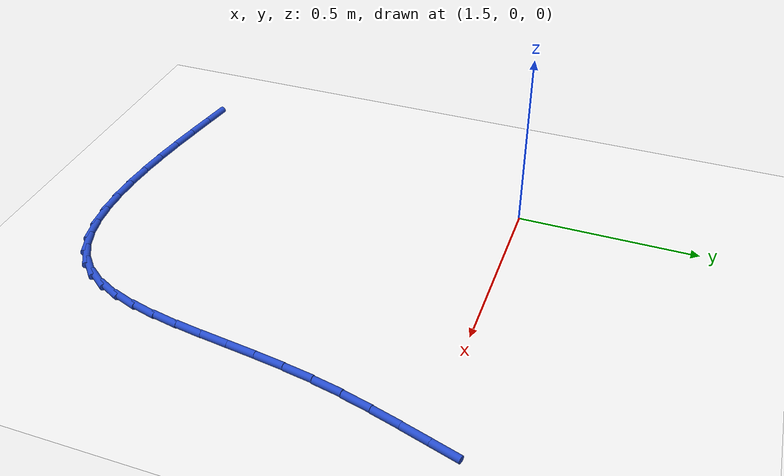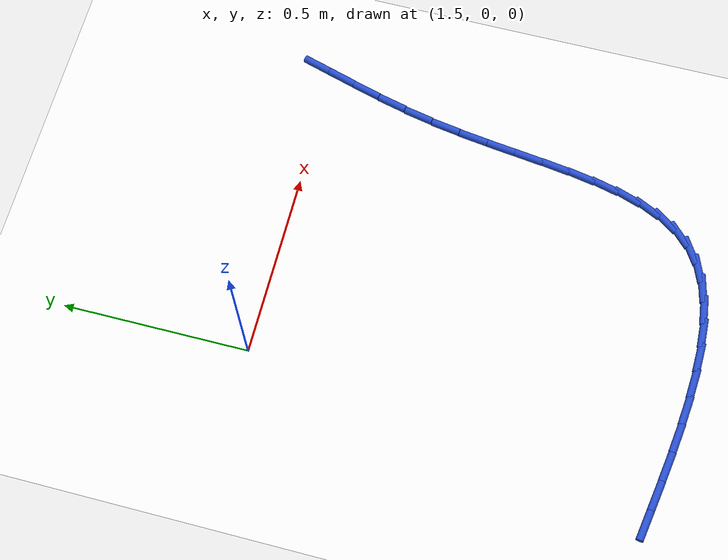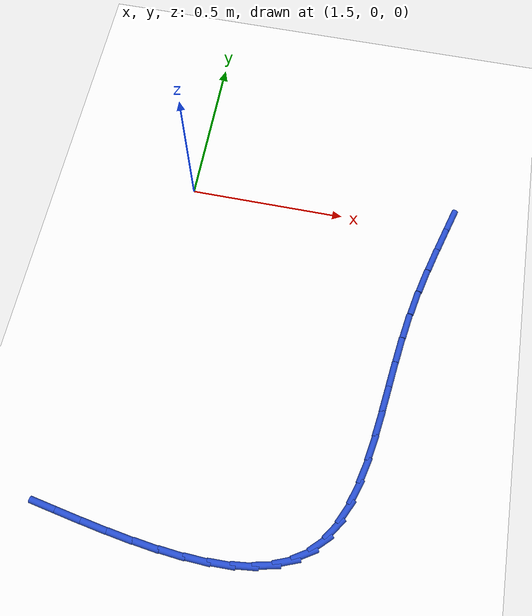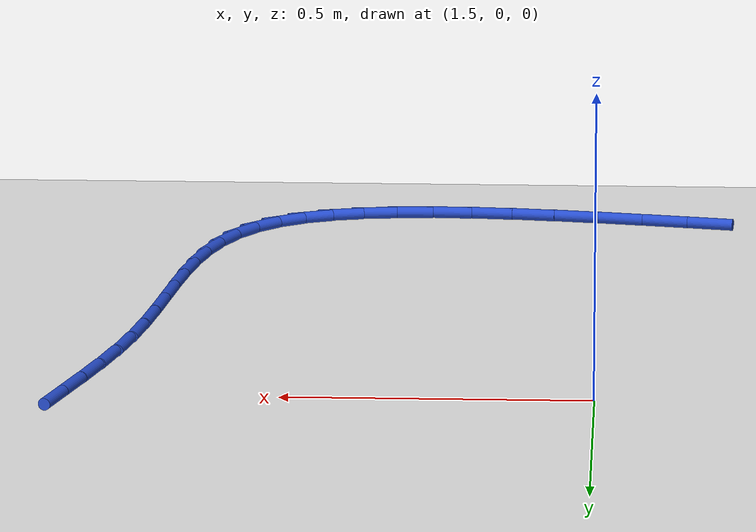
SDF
<sdf version="1.6">
 <world name="default">
  <model name="ground_plane">
   <static>1</static>
   <link name="link">
    <collision name="collision">
     <geometry><plane><normal>0 0 1</normal><size>100 100</size></plane></geometry>
     <surface><friction><ode><mu>100</mu><mu2>50</mu2></ode></friction></surface>
    </collision>
    <visual name="visual">
     <cast_shadows>0</cast_shadows>
     <geometry><plane><normal>0 0 1</normal><size>100 100</size></plane></geometry>
     <material>
      <script><uri>file://media/materials/scripts/gazebo.material</uri><name>Gazebo/WhiteGlow</name></script>
     </material>
    </visual>
   </link>
  </model>
  <model name="line">
   <link name="link_56">
    <pose>2.3531862789197246 0.04844073595215495 0.01 0 1.57 1.288299923309972</pose>
    <collision name="collision">
     <geometry><cylinder><radius>0.01</radius><length>0.08</length></cylinder></geometry>
    </collision>
    <visual name="visual">
     <material>
      <script><name>Gazebo/Blue</name><uri>file://media/materials/scripts/gazebo.material</uri></script>
     </material>
     <geometry><cylinder><radius>0.01</radius><length>0.08</length></cylinder></geometry>
    </visual>
   </link>
   <link name="link_57">
    <pose>2.3313080521662286 -0.02693408233469899 0.01 0 1.57 1.2919317293936248</pose>
    <collision name="collision">
     <geometry><cylinder><radius>0.01</radius><length>0.08</length></cylinder></geometry>
    </collision>
    <visual name="visual">
     <material>
      <script><name>Gazebo/Blue</name><uri>file://media/materials/scripts/gazebo.material</uri></script>
     </material>
     <geometry><cylinder><radius>0.01</radius><length>0.08</length></cylinder></geometry>
    </visual>
   </link>
   <link name="link_58">
    <pose>2.3092125039248854 -0.10410343278648418 0.01 0 1.57 1.3079657842794474</pose>
    <collision name="collision">
     <geometry><cylinder><radius>0.01</radius><length>0.08</length></cylinder></geometry>
    </collision>
    <visual name="visual">
     <material>
      <script><name>Gazebo/Blue</name><uri>file://media/materials/scripts/gazebo.material</uri></script>
     </material>
     <geometry><cylinder><radius>0.01</radius><length>0.08</length></cylinder></geometry>
    </visual>
   </link>
   <link name="link_59">
    <pose>2.288060960289969 -0.1827177245693631 0.01 0 1.57 1.3362492157142865</pose>
    <collision name="collision">
     <geometry><cylinder><radius>0.01</radius><length>0.08</length></cylinder></geometry>
    </collision>
    <visual name="visual">
     <material>
      <script><name>Gazebo/Blue</name><uri>file://media/materials/scripts/gazebo.material</uri></script>
     </material>
     <geometry><cylinder><radius>0.01</radius><length>0.08</length></cylinder></geometry>
    </visual>
   </link>
   <link name="link_60">
    <pose>2.2690147473557545 -0.2624273668494945 0.01 0 1.57 1.3760638374042964</pose>
    <collision name="collision">
     <geometry><cylinder><radius>0.01</radius><length>0.08</length></cylinder></geometry>
    </collision>
    <visual name="visual">
     <material>
      <script><name>Gazebo/Blue</name><uri>file://media/materials/scripts/gazebo.material</uri></script>
     </material>
     <geometry><cylinder><radius>0.01</radius><length>0.08</length></cylinder></geometry>
    </visual>
   </link>
   <link name="link_61">
    <pose>2.253150033687407 -0.34286423186871073 0.01 0 1.57 1.4131498522405987</pose>
    <collision name="collision">
     <geometry><cylinder><radius>0.01</radius><length>0.08</length></cylinder></geometry>
    </collision>
    <visual name="visual">
     <material>
      <script><name>Gazebo/Blue</name><uri>file://media/materials/scripts/gazebo.material</uri></script>
     </material>
     <geometry><cylinder><radius>0.01</radius><length>0.08</length></cylinder></geometry>
    </visual>
   </link>
   <link name="link_62">
    <pose>2.240347622734075 -0.4233999871290474 0.01 0 1.57 1.4370281709953254</pose>
    <collision name="collision">
     <geometry><cylinder><radius>0.01</radius><length>0.08</length></cylinder></geometry>
    </collision>
    <visual name="visual">
     <material>
      <script><name>Gazebo/Blue</name><uri>file://media/materials/scripts/gazebo.material</uri></script>
     </material>
     <geometry><cylinder><radius>0.01</radius><length>0.08</length></cylinder></geometry>
    </visual>
   </link>
   <link name="link_63">
    <pose>2.229606851293002 -0.5032144241962967 0.01 0 1.57 1.447488294890971</pose>
    <collision name="collision">
     <geometry><cylinder><radius>0.01</radius><length>0.08</length></cylinder></geometry>
    </collision>
    <visual name="visual">
     <material>
      <script><name>Gazebo/Blue</name><uri>file://media/materials/scripts/gazebo.material</uri></script>
     </material>
     <geometry><cylinder><radius>0.01</radius><length>0.08</length></cylinder></geometry>
    </visual>
   </link>
   <link name="link_64">
    <pose>2.219906510186932 -0.581482862228714 0.01 0 1.57 1.4439266771376869</pose>
    <collision name="collision">
     <geometry><cylinder><radius>0.01</radius><length>0.08</length></cylinder></geometry>
    </collision>
    <visual name="visual">
     <material>
      <script><name>Gazebo/Blue</name><uri>file://media/materials/scripts/gazebo.material</uri></script>
     </material>
     <geometry><cylinder><radius>0.01</radius><length>0.08</length></cylinder></geometry>
    </visual>
   </link>
   <link name="link_65">
    <pose>2.2102253902386058 -0.6573806203845568 0.01 0 1.57 1.4248974483311745</pose>
    <collision name="collision">
     <geometry><cylinder><radius>0.01</radius><length>0.08</length></cylinder></geometry>
    </collision>
    <visual name="visual">
     <material>
      <script><name>Gazebo/Blue</name><uri>file://media/materials/scripts/gazebo.material</uri></script>
     </material>
     <geometry><cylinder><radius>0.01</radius><length>0.08</length></cylinder></geometry>
    </visual>
   </link>
   <link name="link_66">
    <pose>2.199542282270761 -0.730083017822083 0.01 0 1.57 1.3878635845732934</pose>
    <collision name="collision">
     <geometry><cylinder><radius>0.01</radius><length>0.08</length></cylinder></geometry>
    </collision>
    <visual name="visual">
     <material>
      <script><name>Gazebo/Blue</name><uri>file://media/materials/scripts/gazebo.material</uri></script>
     </material>
     <geometry><cylinder><radius>0.01</radius><length>0.08</length></cylinder></geometry>
    </visual>
   </link>
   <link name="link_67">
    <pose>2.1868359771061416 -0.7987653736995474 0.01 0 1.57 1.3288968995501138</pose>
    <collision name="collision">
     <geometry><cylinder><radius>0.01</radius><length>0.08</length></cylinder></geometry>
    </collision>
    <visual name="visual">
     <material>
      <script><name>Gazebo/Blue</name><uri>file://media/materials/scripts/gazebo.material</uri></script>
     </material>
     <geometry><cylinder><radius>0.01</radius><length>0.08</length></cylinder></geometry>
    </visual>
   </link>
   <link name="link_68">
    <pose>2.1710852655674864 -0.8626030071752091 0.01 0 1.57 1.2424549645302823</pose>
    <collision name="collision">
     <geometry><cylinder><radius>0.01</radius><length>0.08</length></cylinder></geometry>
    </collision>
    <visual name="visual">
     <material>
      <script><name>Gazebo/Blue</name><uri>file://media/materials/scripts/gazebo.material</uri></script>
     </material>
     <geometry><cylinder><radius>0.01</radius><length>0.08</length></cylinder></geometry>
    </visual>
   </link>
   <link name="link_69">
    <pose>2.1512689384775374 -0.9207712374073234 0.01 0 1.57 1.1217115983794206</pose>
    <collision name="collision">
     <geometry><cylinder><radius>0.01</radius><length>0.08</length></cylinder></geometry>
    </collision>
    <visual name="visual">
     <material>
      <script><name>Gazebo/Blue</name><uri>file://media/materials/scripts/gazebo.material</uri></script>
     </material>
     <geometry><cylinder><radius>0.01</radius><length>0.08</length></cylinder></geometry>
    </visual>
   </link>
   <link name="link_70">
    <pose>2.1263657866590346 -0.9724453835541482 0.01 0 1.57 0.960639228568666</pose>
    <collision name="collision">
     <geometry><cylinder><radius>0.01</radius><length>0.08</length></cylinder></geometry>
    </collision>
    <visual name="visual">
     <material>
      <script><name>Gazebo/Blue</name><uri>file://media/materials/scripts/gazebo.material</uri></script>
     </material>
     <geometry><cylinder><radius>0.01</radius><length>0.08</length></cylinder></geometry>
    </visual>
   </link>
   <link name="link_71">
    <pose>2.0953546009347193 -1.0168007647739394 0.01 0 1.57 0.7597948519953239</pose>
    <collision name="collision">
     <geometry><cylinder><radius>0.01</radius><length>0.08</length></cylinder></geometry>
    </collision>
    <visual name="visual">
     <material>
      <script><name>Gazebo/Blue</name><uri>file://media/materials/scripts/gazebo.material</uri></script>
     </material>
     <geometry><cylinder><radius>0.01</radius><length>0.08</length></cylinder></geometry>
    </visual>
   </link>
   <link name="link_72">
    <pose>2.057227091308519 -1.0530242272374302 0.01 0 1.57 0.5491885725010152</pose>
    <collision name="collision">
     <geometry><cylinder><radius>0.01</radius><length>0.08</length></cylinder></geometry>
    </collision>
    <visual name="visual">
     <material>
      <script><name>Gazebo/Blue</name><uri>file://media/materials/scripts/gazebo.material</uri></script>
     </material>
     <geometry><cylinder><radius>0.01</radius><length>0.08</length></cylinder></geometry>
    </visual>
   </link>
   <link name="link_73">
    <pose>2.011657985938089 -1.0809120333519044 0.01 0 1.57 0.3692154297245949</pose>
    <collision name="collision">
     <geometry><cylinder><radius>0.01</radius><length>0.08</length></cylinder></geometry>
    </collision>
    <visual name="visual">
     <material>
      <script><name>Gazebo/Blue</name><uri>file://media/materials/scripts/gazebo.material</uri></script>
     </material>
     <geometry><cylinder><radius>0.01</radius><length>0.08</length></cylinder></geometry>
    </visual>
   </link>
   <link name="link_74">
    <pose>1.959330861894719 -1.1011605810552283 0.01 0 1.57 0.22548959088817536</pose>
    <collision name="collision">
     <geometry><cylinder><radius>0.01</radius><length>0.08</length></cylinder></geometry>
    </collision>
    <visual name="visual">
     <material>
      <script><name>Gazebo/Blue</name><uri>file://media/materials/scripts/gazebo.material</uri></script>
     </material>
     <geometry><cylinder><radius>0.01</radius><length>0.08</length></cylinder></geometry>
    </visual>
   </link>
   <link name="link_75">
    <pose>1.9010105054860313 -1.1145387264284459 0.01 0 1.57 0.11400758267751437</pose>
    <collision name="collision">
     <geometry><cylinder><radius>0.01</radius><length>0.08</length></cylinder></geometry>
    </collision>
    <visual name="visual">
     <material>
      <script><name>Gazebo/Blue</name><uri>file://media/materials/scripts/gazebo.material</uri></script>
     </material>
     <geometry><cylinder><radius>0.01</radius><length>0.08</length></cylinder></geometry>
    </visual>
   </link>
   <link name="link_76">
    <pose>1.8374617030196458 -1.121815325552604 0.01 0 1.57 0.028573879234045488</pose>
    <collision name="collision">
     <geometry><cylinder><radius>0.01</radius><length>0.08</length></cylinder></geometry>
    </collision>
    <visual name="visual">
     <material>
      <script><name>Gazebo/Blue</name><uri>file://media/materials/scripts/gazebo.material</uri></script>
     </material>
     <geometry><cylinder><radius>0.01</radius><length>0.08</length></cylinder></geometry>
    </visual>
   </link>
   <link name="link_77">
    <pose>1.7694492408031859 -1.1237592345087482 0.01 0 1.57 -0.036518081626949556</pose>
    <collision name="collision">
     <geometry><cylinder><radius>0.01</radius><length>0.08</length></cylinder></geometry>
    </collision>
    <visual name="visual">
     <material>
      <script><name>Gazebo/Blue</name><uri>file://media/materials/scripts/gazebo.material</uri></script>
     </material>
     <geometry><cylinder><radius>0.01</radius><length>0.08</length></cylinder></geometry>
    </visual>
   </link>
   <link name="link_78">
    <pose>1.6977379051442705 -1.1211393093779234 0.01 0 1.57 -0.08572770180973717</pose>
    <collision name="collision">
     <geometry><cylinder><radius>0.01</radius><length>0.08</length></cylinder></geometry>
    </collision>
    <visual name="visual">
     <material>
      <script><name>Gazebo/Blue</name><uri>file://media/materials/scripts/gazebo.material</uri></script>
     </material>
     <geometry><cylinder><radius>0.01</radius><length>0.08</length></cylinder></geometry>
    </visual>
   </link>
   <link name="link_79">
    <pose>1.6230924823505233 -1.1147244062411765 0.01 0 1.57 -0.1222931255965906</pose>
    <collision name="collision">
     <geometry><cylinder><radius>0.01</radius><length>0.08</length></cylinder></geometry>
    </collision>
    <visual name="visual">
     <material>
      <script><name>Gazebo/Blue</name><uri>file://media/materials/scripts/gazebo.material</uri></script>
     </material>
     <geometry><cylinder><radius>0.01</radius><length>0.08</length></cylinder></geometry>
    </visual>
   </link>
   <link name="link_80">
    <pose>1.5462777587295637 -1.1052833811795524 0.01 0 1.57 -0.1484573717554343</pose>
    <collision name="collision">
     <geometry><cylinder><radius>0.01</radius><length>0.08</length></cylinder></geometry>
    </collision>
    <visual name="visual">
     <material>
      <script><name>Gazebo/Blue</name><uri>file://media/materials/scripts/gazebo.material</uri></script>
     </material>
     <geometry><cylinder><radius>0.01</radius><length>0.08</length></cylinder></geometry>
    </visual>
   </link>
   <link name="link_81">
    <pose>1.4680585205890146 -1.0935850902740976 0.01 0 1.57 -0.1656858270710043</pose>
    <collision name="collision">
     <geometry><cylinder><radius>0.01</radius><length>0.08</length></cylinder></geometry>
    </collision>
    <visual name="visual">
     <material>
      <script><name>Gazebo/Blue</name><uri>file://media/materials/scripts/gazebo.material</uri></script>
     </material>
     <geometry><cylinder><radius>0.01</radius><length>0.08</length></cylinder></geometry>
    </visual>
   </link>
   <link name="link_82">
    <pose>1.3891995542364968 -1.0803983896058564 0.01 0 1.57 -0.17482043831313557</pose>
    <collision name="collision">
     <geometry><cylinder><radius>0.01</radius><length>0.08</length></cylinder></geometry>
    </collision>
    <visual name="visual">
     <material>
      <script><name>Gazebo/Blue</name><uri>file://media/materials/scripts/gazebo.material</uri></script>
     </material>
     <geometry><cylinder><radius>0.01</radius><length>0.08</length></cylinder></geometry>
    </visual>
   </link>
   <link name="link_83">
    <pose>1.31046564597963 -1.0664921352558756 0.01 0 1.57 -0.17616385432731377</pose>
    <collision name="collision">
     <geometry><cylinder><radius>0.01</radius><length>0.08</length></cylinder></geometry>
    </collision>
    <visual name="visual">
     <material>
      <script><name>Gazebo/Blue</name><uri>file://media/materials/scripts/gazebo.material</uri></script>
     </material>
     <geometry><cylinder><radius>0.01</radius><length>0.08</length></cylinder></geometry>
    </visual>
   </link>
  </model>
 </world>
</sdf>
